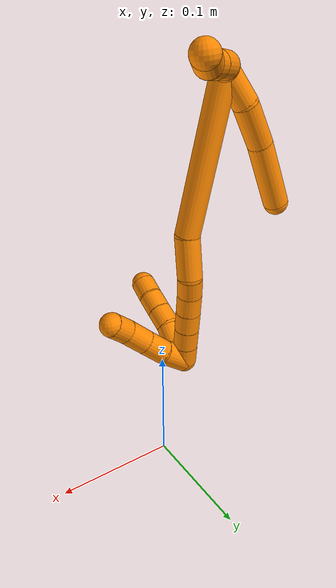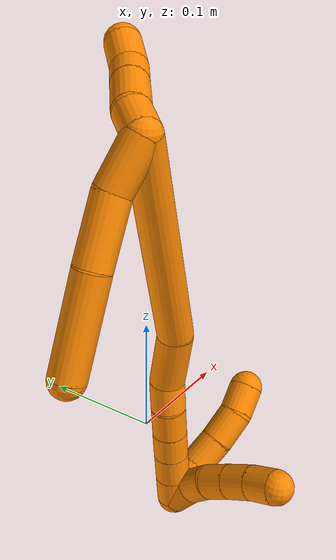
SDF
<sdf version="1.7">
 <world name="default">
  <model name="19">
   <static>0</static>
   <link name="19">
    <collision name="collision-cylinder-e_1_2_8">
     <pose>-0.005846 0.006263 -0.016114 -2.77086 -0.326098 1.44026</pose>
     <geometry><cylinder><radius>0.0125</radius><length>0.0365</length></cylinder></geometry>
     <surface>
      <friction><ode><mu>1.16</mu><mu2>1.16</mu2><slip1>0</slip1><slip2>0</slip2></ode></friction>
      <contact><ode><kp>1e+06</kp><kd>1</kd><max_vel>0</max_vel><min_depth>0.001</min_depth></ode></contact>
     </surface>
    </collision>
    <visual name="visual-cylinder-e_1_2_8">
     <pose>-0.005846 0.006263 -0.016114 -2.77086 -0.326098 1.44026</pose>
     <geometry><cylinder><radius>0.0125</radius><length>0.0365</length></cylinder></geometry>
     <material><ambient>0.996078 0.537255 0 1</ambient></material>
    </visual>
    <collision name="collision-cylinder-e_2_8_9">
     <pose>-0.021328 0.015014 -0.052707 -3.02075 -0.436945 2.60954</pose>
     <geometry><cylinder><radius>0.0125</radius><length>0.045539</length></cylinder></geometry>
     <surface>
      <friction><ode><mu>1.16</mu><mu2>1.16</mu2><slip1>0</slip1><slip2>0</slip2></ode></friction>
      <contact><ode><kp>1e+06</kp><kd>1</kd><max_vel>0</max_vel><min_depth>0.001</min_depth></ode></contact>
     </surface>
    </collision>
    <visual name="visual-cylinder-e_2_8_9">
     <pose>-0.021328 0.015014 -0.052707 -3.02075 -0.436945 2.60954</pose>
     <geometry><cylinder><radius>0.0125</radius><length>0.045539</length></cylinder></geometry>
     <material><ambient>0.996078 0.537255 0 1</ambient></material>
    </visual>
    <collision name="collision-cylinder-e_3_9_6">
     <pose>-0.041186 0.020519 -0.105452 -3.04832 -0.305581 2.55303</pose>
     <geometry><cylinder><radius>0.0125</radius><length>0.067961</length></cylinder></geometry>
     <surface>
      <friction><ode><mu>1.16</mu><mu2>1.16</mu2><slip1>0</slip1><slip2>0</slip2></ode></friction>
      <contact><ode><kp>1e+06</kp><kd>1</kd><max_vel>0</max_vel><min_depth>0.001</min_depth></ode></contact>
     </surface>
    </collision>
    <visual name="visual-cylinder-e_3_9_6">
     <pose>-0.041186 0.020519 -0.105452 -3.04832 -0.305581 2.55303</pose>
     <geometry><cylinder><radius>0.0125</radius><length>0.067961</length></cylinder></geometry>
     <material><ambient>0.996078 0.537255 0 1</ambient></material>
    </visual>
    <collision name="collision-cylinder-e_1_2_10">
     <pose>0.009692 0.0043 0.003019 -0.958643 1.07407 -0.60023</pose>
     <geometry><cylinder><radius>0.0125</radius><length>0.022049</length></cylinder></geometry>
     <surface>
      <friction><ode><mu>1.16</mu><mu2>1.16</mu2><slip1>0</slip1><slip2>0</slip2></ode></friction>
      <contact><ode><kp>1e+06</kp><kd>1</kd><max_vel>0</max_vel><min_depth>0.001</min_depth></ode></contact>
     </surface>
    </collision>
    <visual name="visual-cylinder-e_1_2_10">
     <pose>0.009692 0.0043 0.003019 -0.958643 1.07407 -0.60023</pose>
     <geometry><cylinder><radius>0.0125</radius><length>0.022049</length></cylinder></geometry>
     <material><ambient>0.996078 0.537255 0 1</ambient></material>
    </visual>
    <collision name="collision-cylinder-e_2_10_11">
     <pose>0.035452 0.010832 0.008846 -0.671817 1.35112 -0.545611</pose>
     <geometry><cylinder><radius>0.0125</radius><length>0.032927</length></cylinder></geometry>
     <surface>
      <friction><ode><mu>1.16</mu><mu2>1.16</mu2><slip1>0</slip1><slip2>0</slip2></ode></friction>
      <contact><ode><kp>1e+06</kp><kd>1</kd><max_vel>0</max_vel><min_depth>0.001</min_depth></ode></contact>
     </surface>
    </collision>
    <visual name="visual-cylinder-e_2_10_11">
     <pose>0.035452 0.010832 0.008846 -0.671817 1.35112 -0.545611</pose>
     <geometry><cylinder><radius>0.0125</radius><length>0.032927</length></cylinder></geometry>
     <material><ambient>0.996078 0.537255 0 1</ambient></material>
    </visual>
    <collision name="collision-cylinder-e_3_11_12">
     <pose>0.061472 0.014295 0.013248 -0.657041 1.37116 -0.54381</pose>
     <geometry><cylinder><radius>0.0125</radius><length>0.020306</length></cylinder></geometry>
     <surface>
      <friction><ode><mu>1.16</mu><mu2>1.16</mu2><slip1>0</slip1><slip2>0</slip2></ode></friction>
      <contact><ode><kp>1e+06</kp><kd>1</kd><max_vel>0</max_vel><min_depth>0.001</min_depth></ode></contact>
     </surface>
    </collision>
    <visual name="visual-cylinder-e_3_11_12">
     <pose>0.061472 0.014295 0.013248 -0.657041 1.37116 -0.54381</pose>
     <geometry><cylinder><radius>0.0125</radius><length>0.020306</length></cylinder></geometry>
     <material><ambient>0.996078 0.537255 0 1</ambient></material>
    </visual>
    <collision name="collision-cylinder-e_4_12_5">
     <pose>0.08217 0.019206 0.019711 -0.647468 1.05429 -0.385772</pose>
     <geometry><cylinder><radius>0.0125</radius><length>0.024718</length></cylinder></geometry>
     <surface>
      <friction><ode><mu>1.16</mu><mu2>1.16</mu2><slip1>0</slip1><slip2>0</slip2></ode></friction>
      <contact><ode><kp>1e+06</kp><kd>1</kd><max_vel>0</max_vel><min_depth>0.001</min_depth></ode></contact>
     </surface>
    </collision>
    <visual name="visual-cylinder-e_4_12_5">
     <pose>0.08217 0.019206 0.019711 -0.647468 1.05429 -0.385772</pose>
     <geometry><cylinder><radius>0.0125</radius><length>0.024718</length></cylinder></geometry>
     <material><ambient>0.996078 0.537255 0 1</ambient></material>
    </visual>
    <collision name="collision-cylinder-e_1_2_13">
     <pose>0.014059 -0.019553 -0.07352 2.88166 0.182745 1.22282</pose>
     <geometry><cylinder><radius>0.0125</radius><length>0.154728</length></cylinder></geometry>
     <surface>
      <friction><ode><mu>1.16</mu><mu2>1.16</mu2><slip1>0</slip1><slip2>0</slip2></ode></friction>
      <contact><ode><kp>1e+06</kp><kd>1</kd><max_vel>0</max_vel><min_depth>0.001</min_depth></ode></contact>
     </surface>
    </collision>
    <visual name="visual-cylinder-e_1_2_13">
     <pose>0.014059 -0.019553 -0.07352 2.88166 0.182745 1.22282</pose>
     <geometry><cylinder><radius>0.0125</radius><length>0.154728</length></cylinder></geometry>
     <material><ambient>0.996078 0.537255 0 1</ambient></material>
    </visual>
    <collision name="collision-cylinder-e_2_13_14">
     <pose>0.029837 -0.039174 -0.168137 3.13836 0.081259 3.0622</pose>
     <geometry><cylinder><radius>0.0125</radius><length>0.042332</length></cylinder></geometry>
     <surface>
      <friction><ode><mu>1.16</mu><mu2>1.16</mu2><slip1>0</slip1><slip2>0</slip2></ode></friction>
      <contact><ode><kp>1e+06</kp><kd>1</kd><max_vel>0</max_vel><min_depth>0.001</min_depth></ode></contact>
     </surface>
    </collision>
    <visual name="visual-cylinder-e_2_13_14">
     <pose>0.029837 -0.039174 -0.168137 3.13836 0.081259 3.0622</pose>
     <geometry><cylinder><radius>0.0125</radius><length>0.042332</length></cylinder></geometry>
     <material><ambient>0.996078 0.537255 0 1</ambient></material>
    </visual>
    <collision name="collision-cylinder-e_3_14_15">
     <pose>0.029811 -0.04126 -0.199489 2.94738 -0.165328 -1.4096</pose>
     <geometry><cylinder><radius>0.0125</radius><length>0.021195</length></cylinder></geometry>
     <surface>
      <friction><ode><mu>1.16</mu><mu2>1.16</mu2><slip1>0</slip1><slip2>0</slip2></ode></friction>
      <contact><ode><kp>1e+06</kp><kd>1</kd><max_vel>0</max_vel><min_depth>0.001</min_depth></ode></contact>
     </surface>
    </collision>
    <visual name="visual-cylinder-e_3_14_15">
     <pose>0.029811 -0.04126 -0.199489 2.94738 -0.165328 -1.4096</pose>
     <geometry><cylinder><radius>0.0125</radius><length>0.021195</length></cylinder></geometry>
     <material><ambient>0.996078 0.537255 0 1</ambient></material>
    </visual>
    <collision name="collision-cylinder-e_4_15_16">
     <pose>0.027748 -0.045292 -0.220167 2.95059 -0.030013 -0.310813</pose>
     <geometry><cylinder><radius>0.0125</radius><length>0.021238</length></cylinder></geometry>
     <surface>
      <friction><ode><mu>1.16</mu><mu2>1.16</mu2><slip1>0</slip1><slip2>0</slip2></ode></friction>
      <contact><ode><kp>1e+06</kp><kd>1</kd><max_vel>0</max_vel><min_depth>0.001</min_depth></ode></contact>
     </surface>
    </collision>
    <visual name="visual-cylinder-e_4_15_16">
     <pose>0.027748 -0.045292 -0.220167 2.95059 -0.030013 -0.310813</pose>
     <geometry><cylinder><radius>0.0125</radius><length>0.021238</length></cylinder></geometry>
     <material><ambient>0.996078 0.537255 0 1</ambient></material>
    </visual>
    <collision name="collision-cylinder-e_5_16_17">
     <pose>0.027302 -0.049232 -0.240462 2.94908 -0.012671 -0.131043</pose>
     <geometry><cylinder><radius>0.0125</radius><length>0.020123</length></cylinder></geometry>
     <surface>
      <friction><ode><mu>1.16</mu><mu2>1.16</mu2><slip1>0</slip1><slip2>0</slip2></ode></friction>
      <contact><ode><kp>1e+06</kp><kd>1</kd><max_vel>0</max_vel><min_depth>0.001</min_depth></ode></contact>
     </surface>
    </collision>
    <visual name="visual-cylinder-e_5_16_17">
     <pose>0.027302 -0.049232 -0.240462 2.94908 -0.012671 -0.131043</pose>
     <geometry><cylinder><radius>0.0125</radius><length>0.020123</length></cylinder></geometry>
     <material><ambient>0.996078 0.537255 0 1</ambient></material>
    </visual>
    <collision name="collision-cylinder-e_6_17_18">
     <pose>0.026873 -0.053218 -0.260299 2.93753 -0.029652 -0.287636</pose>
     <geometry><cylinder><radius>0.0125</radius><length>0.020355</length></cylinder></geometry>
     <surface>
      <friction><ode><mu>1.16</mu><mu2>1.16</mu2><slip1>0</slip1><slip2>0</slip2></ode></friction>
      <contact><ode><kp>1e+06</kp><kd>1</kd><max_vel>0</max_vel><min_depth>0.001</min_depth></ode></contact>
     </surface>
    </collision>
    <visual name="visual-cylinder-e_6_17_18">
     <pose>0.026873 -0.053218 -0.260299 2.93753 -0.029652 -0.287636</pose>
     <geometry><cylinder><radius>0.0125</radius><length>0.020355</length></cylinder></geometry>
     <material><ambient>0.996078 0.537255 0 1</ambient></material>
    </visual>
    <collision name="collision-cylinder-e_7_18_1">
     <pose>0.026091 -0.057357 -0.280046 2.93244 -0.047957 -0.449299</pose>
     <geometry><cylinder><radius>0.0125</radius><length>0.020029</length></cylinder></geometry>
     <surface>
      <friction><ode><mu>1.16</mu><mu2>1.16</mu2><slip1>0</slip1><slip2>0</slip2></ode></friction>
      <contact><ode><kp>1e+06</kp><kd>1</kd><max_vel>0</max_vel><min_depth>0.001</min_depth></ode></contact>
     </surface>
    </collision>
    <visual name="visual-cylinder-e_7_18_1">
     <pose>0.026091 -0.057357 -0.280046 2.93244 -0.047957 -0.449299</pose>
     <geometry><cylinder><radius>0.0125</radius><length>0.020029</length></cylinder></geometry>
     <material><ambient>0.996078 0.537255 0 1</ambient></material>
    </visual>
    <collision name="collision-cylinder-e_1_1_19">
     <pose>0.023452 -0.064747 -0.281639 0.575431 -0.217595 -0.064625</pose>
     <geometry><cylinder><radius>0.0125</radius><length>0.02</length></cylinder></geometry>
     <surface>
      <friction><ode><mu>1.16</mu><mu2>1.16</mu2><slip1>0</slip1><slip2>0</slip2></ode></friction>
      <contact><ode><kp>1e+06</kp><kd>1</kd><max_vel>0</max_vel><min_depth>0.001</min_depth></ode></contact>
     </surface>
    </collision>
    <visual name="visual-cylinder-e_1_1_19">
     <pose>0.023452 -0.064747 -0.281639 0.575431 -0.217595 -0.064625</pose>
     <geometry><cylinder><radius>0.0125</radius><length>0.02</length></cylinder></geometry>
     <material><ambient>0.996078 0.537255 0 1</ambient></material>
    </visual>
    <collision name="collision-cylinder-e_2_19_20">
     <pose>0.016852 -0.075271 -0.266159 0.620628 -0.460168 -0.149943</pose>
     <geometry><cylinder><radius>0.0125</radius><length>0.02</length></cylinder></geometry>
     <surface>
      <friction><ode><mu>1.16</mu><mu2>1.16</mu2><slip1>0</slip1><slip2>0</slip2></ode></friction>
      <contact><ode><kp>1e+06</kp><kd>1</kd><max_vel>0</max_vel><min_depth>0.001</min_depth></ode></contact>
     </surface>
    </collision>
    <visual name="visual-cylinder-e_2_19_20">
     <pose>0.016852 -0.075271 -0.266159 0.620628 -0.460168 -0.149943</pose>
     <geometry><cylinder><radius>0.0125</radius><length>0.02</length></cylinder></geometry>
     <material><ambient>0.996078 0.537255 0 1</ambient></material>
    </visual>
    <collision name="collision-cylinder-e_3_20_21">
     <pose>0.007888 -0.087409 -0.253253 0.889476 -0.469388 -0.226923</pose>
     <geometry><cylinder><radius>0.0125</radius><length>0.02</length></cylinder></geometry>
     <surface>
      <friction><ode><mu>1.16</mu><mu2>1.16</mu2><slip1>0</slip1><slip2>0</slip2></ode></friction>
      <contact><ode><kp>1e+06</kp><kd>1</kd><max_vel>0</max_vel><min_depth>0.001</min_depth></ode></contact>
     </surface>
    </collision>
    <visual name="visual-cylinder-e_3_20_21">
     <pose>0.007888 -0.087409 -0.253253 0.889476 -0.469388 -0.226923</pose>
     <geometry><cylinder><radius>0.0125</radius><length>0.02</length></cylinder></geometry>
     <material><ambient>0.996078 0.537255 0 1</ambient></material>
    </visual>
    <collision name="collision-cylinder-e_4_21_22">
     <pose>-0.001454 -0.10124 -0.242239 0.907287 -0.502676 -0.249082</pose>
     <geometry><cylinder><radius>0.0125</radius><length>0.02</length></cylinder></geometry>
     <surface>
      <friction><ode><mu>1.16</mu><mu2>1.16</mu2><slip1>0</slip1><slip2>0</slip2></ode></friction>
      <contact><ode><kp>1e+06</kp><kd>1</kd><max_vel>0</max_vel><min_depth>0.001</min_depth></ode></contact>
     </surface>
    </collision>
    <visual name="visual-cylinder-e_4_21_22">
     <pose>-0.001454 -0.10124 -0.242239 0.907287 -0.502676 -0.249082</pose>
     <geometry><cylinder><radius>0.0125</radius><length>0.02</length></cylinder></geometry>
     <material><ambient>0.996078 0.537255 0 1</ambient></material>
    </visual>
    <collision name="collision-cylinder-e_5_22_4">
     <pose>-0.011915 -0.115021 -0.232274 0.9845 -0.599634 -0.328579</pose>
     <geometry><cylinder><radius>0.0125</radius><length>0.02</length></cylinder></geometry>
     <surface>
      <friction><ode><mu>1.16</mu><mu2>1.16</mu2><slip1>0</slip1><slip2>0</slip2></ode></friction>
      <contact><ode><kp>1e+06</kp><kd>1</kd><max_vel>0</max_vel><min_depth>0.001</min_depth></ode></contact>
     </surface>
    </collision>
    <visual name="visual-cylinder-e_5_22_4">
     <pose>-0.011915 -0.115021 -0.232274 0.9845 -0.599634 -0.328579</pose>
     <geometry><cylinder><radius>0.0125</radius><length>0.02</length></cylinder></geometry>
     <material><ambient>0.996078 0.537255 0 1</ambient></material>
    </visual>
    <collision name="collision-cylinder-e_1_1_23">
     <pose>0.034589 -0.065965 -0.280976 0.635508 0.684394 0.233251</pose>
     <geometry><cylinder><radius>0.0125</radius><length>0.028402</length></cylinder></geometry>
     <surface>
      <friction><ode><mu>1.16</mu><mu2>1.16</mu2><slip1>0</slip1><slip2>0</slip2></ode></friction>
      <contact><ode><kp>1e+06</kp><kd>1</kd><max_vel>0</max_vel><min_depth>0.001</min_depth></ode></contact>
     </surface>
    </collision>
    <visual name="visual-cylinder-e_1_1_23">
     <pose>0.034589 -0.065965 -0.280976 0.635508 0.684394 0.233251</pose>
     <geometry><cylinder><radius>0.0125</radius><length>0.028402</length></cylinder></geometry>
     <material><ambient>0.996078 0.537255 0 1</ambient></material>
    </visual>
    <collision name="collision-cylinder-e_2_23_24">
     <pose>0.049325 -0.079071 -0.263805 0.669018 0.497593 0.176151</pose>
     <geometry><cylinder><radius>0.0125</radius><length>0.024128</length></cylinder></geometry>
     <surface>
      <friction><ode><mu>1.16</mu><mu2>1.16</mu2><slip1>0</slip1><slip2>0</slip2></ode></friction>
      <contact><ode><kp>1e+06</kp><kd>1</kd><max_vel>0</max_vel><min_depth>0.001</min_depth></ode></contact>
     </surface>
    </collision>
    <visual name="visual-cylinder-e_2_23_24">
     <pose>0.049325 -0.079071 -0.263805 0.669018 0.497593 0.176151</pose>
     <geometry><cylinder><radius>0.0125</radius><length>0.024128</length></cylinder></geometry>
     <material><ambient>0.996078 0.537255 0 1</ambient></material>
    </visual>
    <collision name="collision-cylinder-e_3_24_25">
     <pose>0.061871 -0.091587 -0.246335 0.57566 0.556397 0.168706</pose>
     <geometry><cylinder><radius>0.0125</radius><length>0.025704</length></cylinder></geometry>
     <surface>
      <friction><ode><mu>1.16</mu><mu2>1.16</mu2><slip1>0</slip1><slip2>0</slip2></ode></friction>
      <contact><ode><kp>1e+06</kp><kd>1</kd><max_vel>0</max_vel><min_depth>0.001</min_depth></ode></contact>
     </surface>
    </collision>
    <visual name="visual-cylinder-e_3_24_25">
     <pose>0.061871 -0.091587 -0.246335 0.57566 0.556397 0.168706</pose>
     <geometry><cylinder><radius>0.0125</radius><length>0.025704</length></cylinder></geometry>
     <material><ambient>0.996078 0.537255 0 1</ambient></material>
    </visual>
    <collision name="collision-cylinder-e_4_25_3">
     <pose>0.076139 -0.100333 -0.22979 0.362657 0.75781 0.145735</pose>
     <geometry><cylinder><radius>0.0125</radius><length>0.021765</length></cylinder></geometry>
     <surface>
      <friction><ode><mu>1.16</mu><mu2>1.16</mu2><slip1>0</slip1><slip2>0</slip2></ode></friction>
      <contact><ode><kp>1e+06</kp><kd>1</kd><max_vel>0</max_vel><min_depth>0.001</min_depth></ode></contact>
     </surface>
    </collision>
    <visual name="visual-cylinder-e_4_25_3">
     <pose>0.076139 -0.100333 -0.22979 0.362657 0.75781 0.145735</pose>
     <geometry><cylinder><radius>0.0125</radius><length>0.021765</length></cylinder></geometry>
     <material><ambient>0.996078 0.537255 0 1</ambient></material>
    </visual>
    <collision name="collision-sphere-3">
     <pose>0.083619 -0.103137 -0.2224 0 -0 0</pose>
     <geometry><sphere><radius>0.0125</radius></sphere></geometry>
     <surface>
      <friction><ode><mu>1.16</mu><mu2>1.16</mu2><slip1>0</slip1><slip2>0</slip2></ode></friction>
      <contact><ode><kp>1e+06</kp><kd>1</kd><max_vel>0</max_vel><min_depth>0.001</min_depth></ode></contact>
     </surface>
    </collision>
    <visual name="visual-sphere-3">
     <pose>0.083619 -0.103137 -0.2224 0 -0 0</pose>
     <geometry><sphere><radius>0.0125</radius></sphere></geometry>
     <material><ambient>0.996078 0.537255 0 1</ambient></material>
    </visual>
    <collision name="collision-sphere-25">
     <pose>0.068658 -0.097529 -0.23718 0 -0 0</pose>
     <geometry><sphere><radius>0.0125</radius></sphere></geometry>
     <surface>
      <friction><ode><mu>1.16</mu><mu2>1.16</mu2><slip1>0</slip1><slip2>0</slip2></ode></friction>
      <contact><ode><kp>1e+06</kp><kd>1</kd><max_vel>0</max_vel><min_depth>0.001</min_depth></ode></contact>
     </surface>
    </collision>
    <visual name="visual-sphere-25">
     <pose>0.068658 -0.097529 -0.23718 0 -0 0</pose>
     <geometry><sphere><radius>0.0125</radius></sphere></geometry>
     <material><ambient>0.996078 0.537255 0 1</ambient></material>
    </visual>
    <collision name="collision-sphere-24">
     <pose>0.055083 -0.085646 -0.25549 0 -0 0</pose>
     <geometry><sphere><radius>0.0125</radius></sphere></geometry>
     <surface>
      <friction><ode><mu>1.16</mu><mu2>1.16</mu2><slip1>0</slip1><slip2>0</slip2></ode></friction>
      <contact><ode><kp>1e+06</kp><kd>1</kd><max_vel>0</max_vel><min_depth>0.001</min_depth></ode></contact>
     </surface>
    </collision>
    <visual name="visual-sphere-24">
     <pose>0.055083 -0.085646 -0.25549 0 -0 0</pose>
     <geometry><sphere><radius>0.0125</radius></sphere></geometry>
     <material><ambient>0.996078 0.537255 0 1</ambient></material>
    </visual>
    <collision name="collision-sphere-23">
     <pose>0.043567 -0.072496 -0.272121 0 -0 0</pose>
     <geometry><sphere><radius>0.0125</radius></sphere></geometry>
     <surface>
      <friction><ode><mu>1.16</mu><mu2>1.16</mu2><slip1>0</slip1><slip2>0</slip2></ode></friction>
      <contact><ode><kp>1e+06</kp><kd>1</kd><max_vel>0</max_vel><min_depth>0.001</min_depth></ode></contact>
     </surface>
    </collision>
    <visual name="visual-sphere-23">
     <pose>0.043567 -0.072496 -0.272121 0 -0 0</pose>
     <geometry><sphere><radius>0.0125</radius></sphere></geometry>
     <material><ambient>0.996078 0.537255 0 1</ambient></material>
    </visual>
    <collision name="collision-sphere-4">
     <pose>-0.017558 -0.121898 -0.227707 0 -0 0</pose>
     <geometry><sphere><radius>0.0125</radius></sphere></geometry>
     <surface>
      <friction><ode><mu>1.16</mu><mu2>1.16</mu2><slip1>0</slip1><slip2>0</slip2></ode></friction>
      <contact><ode><kp>1e+06</kp><kd>1</kd><max_vel>0</max_vel><min_depth>0.001</min_depth></ode></contact>
     </surface>
    </collision>
    <visual name="visual-sphere-4">
     <pose>-0.017558 -0.121898 -0.227707 0 -0 0</pose>
     <geometry><sphere><radius>0.0125</radius></sphere></geometry>
     <material><ambient>0.996078 0.537255 0 1</ambient></material>
    </visual>
    <collision name="collision-sphere-22">
     <pose>-0.006271 -0.108144 -0.236842 0 -0 0</pose>
     <geometry><sphere><radius>0.0125</radius></sphere></geometry>
     <surface>
      <friction><ode><mu>1.16</mu><mu2>1.16</mu2><slip1>0</slip1><slip2>0</slip2></ode></friction>
      <contact><ode><kp>1e+06</kp><kd>1</kd><max_vel>0</max_vel><min_depth>0.001</min_depth></ode></contact>
     </surface>
    </collision>
    <visual name="visual-sphere-22">
     <pose>-0.006271 -0.108144 -0.236842 0 -0 0</pose>
     <geometry><sphere><radius>0.0125</radius></sphere></geometry>
     <material><ambient>0.996078 0.537255 0 1</ambient></material>
    </visual>
    <collision name="collision-sphere-21">
     <pose>0.003364 -0.094337 -0.247636 0 -0 0</pose>
     <geometry><sphere><radius>0.0125</radius></sphere></geometry>
     <surface>
      <friction><ode><mu>1.16</mu><mu2>1.16</mu2><slip1>0</slip1><slip2>0</slip2></ode></friction>
      <contact><ode><kp>1e+06</kp><kd>1</kd><max_vel>0</max_vel><min_depth>0.001</min_depth></ode></contact>
     </surface>
    </collision>
    <visual name="visual-sphere-21">
     <pose>0.003364 -0.094337 -0.247636 0 -0 0</pose>
     <geometry><sphere><radius>0.0125</radius></sphere></geometry>
     <material><ambient>0.996078 0.537255 0 1</ambient></material>
    </visual>
    <collision name="collision-sphere-20">
     <pose>0.012411 -0.080482 -0.25887 0 -0 0</pose>
     <geometry><sphere><radius>0.0125</radius></sphere></geometry>
     <surface>
      <friction><ode><mu>1.16</mu><mu2>1.16</mu2><slip1>0</slip1><slip2>0</slip2></ode></friction>
      <contact><ode><kp>1e+06</kp><kd>1</kd><max_vel>0</max_vel><min_depth>0.001</min_depth></ode></contact>
     </surface>
    </collision>
    <visual name="visual-sphere-20">
     <pose>0.012411 -0.080482 -0.25887 0 -0 0</pose>
     <geometry><sphere><radius>0.0125</radius></sphere></geometry>
     <material><ambient>0.996078 0.537255 0 1</ambient></material>
    </visual>
    <collision name="collision-sphere-11">
     <pose>0.05152 0.013065 0.011654 0 -0 0</pose>
     <geometry><sphere><radius>0.0125</radius></sphere></geometry>
     <surface>
      <friction><ode><mu>1.16</mu><mu2>1.16</mu2><slip1>0</slip1><slip2>0</slip2></ode></friction>
      <contact><ode><kp>1e+06</kp><kd>1</kd><max_vel>0</max_vel><min_depth>0.001</min_depth></ode></contact>
     </surface>
    </collision>
    <visual name="visual-sphere-11">
     <pose>0.05152 0.013065 0.011654 0 -0 0</pose>
     <geometry><sphere><radius>0.0125</radius></sphere></geometry>
     <material><ambient>0.996078 0.537255 0 1</ambient></material>
    </visual>
    <collision name="collision-sphere-10">
     <pose>0.019384 0.008599 0.006038 0 -0 0</pose>
     <geometry><sphere><radius>0.0125</radius></sphere></geometry>
     <surface>
      <friction><ode><mu>1.16</mu><mu2>1.16</mu2><slip1>0</slip1><slip2>0</slip2></ode></friction>
      <contact><ode><kp>1e+06</kp><kd>1</kd><max_vel>0</max_vel><min_depth>0.001</min_depth></ode></contact>
     </surface>
    </collision>
    <visual name="visual-sphere-10">
     <pose>0.019384 0.008599 0.006038 0 -0 0</pose>
     <geometry><sphere><radius>0.0125</radius></sphere></geometry>
     <material><ambient>0.996078 0.537255 0 1</ambient></material>
    </visual>
    <collision name="collision-sphere-6">
     <pose>-0.051409 0.023537 -0.137718 0 -0 0</pose>
     <geometry><sphere><radius>0.0125</radius></sphere></geometry>
     <surface>
      <friction><ode><mu>1.16</mu><mu2>1.16</mu2><slip1>0</slip1><slip2>0</slip2></ode></friction>
      <contact><ode><kp>1e+06</kp><kd>1</kd><max_vel>0</max_vel><min_depth>0.001</min_depth></ode></contact>
     </surface>
    </collision>
    <visual name="visual-sphere-6">
     <pose>-0.051409 0.023537 -0.137718 0 -0 0</pose>
     <geometry><sphere><radius>0.0125</radius></sphere></geometry>
     <material><ambient>0.996078 0.537255 0 1</ambient></material>
    </visual>
    <collision name="collision-sphere-9">
     <pose>-0.030963 0.017501 -0.073187 0 -0 0</pose>
     <geometry><sphere><radius>0.0125</radius></sphere></geometry>
     <surface>
      <friction><ode><mu>1.16</mu><mu2>1.16</mu2><slip1>0</slip1><slip2>0</slip2></ode></friction>
      <contact><ode><kp>1e+06</kp><kd>1</kd><max_vel>0</max_vel><min_depth>0.001</min_depth></ode></contact>
     </surface>
    </collision>
    <visual name="visual-sphere-9">
     <pose>-0.030963 0.017501 -0.073187 0 -0 0</pose>
     <geometry><sphere><radius>0.0125</radius></sphere></geometry>
     <material><ambient>0.996078 0.537255 0 1</ambient></material>
    </visual>
    <collision name="collision-sphere-2">
     <geometry><sphere><radius>0.0125</radius></sphere></geometry>
     <surface>
      <friction><ode><mu>1.16</mu><mu2>1.16</mu2><slip1>0</slip1><slip2>0</slip2></ode></friction>
      <contact><ode><kp>1e+06</kp><kd>1</kd><max_vel>0</max_vel><min_depth>0.001</min_depth></ode></contact>
     </surface>
    </collision>
    <visual name="visual-sphere-2">
     <geometry><sphere><radius>0.0125</radius></sphere></geometry>
     <material><ambient>0.996078 0.537255 0 1</ambient></material>
    </visual>
    <collision name="collision-sphere-19">
     <pose>0.021293 -0.070061 -0.273448 0 -0 0</pose>
     <geometry><sphere><radius>0.0125</radius></sphere></geometry>
     <surface>
      <friction><ode><mu>1.16</mu><mu2>1.16</mu2><slip1>0</slip1><slip2>0</slip2></ode></friction>
      <contact><ode><kp>1e+06</kp><kd>1</kd><max_vel>0</max_vel><min_depth>0.001</min_depth></ode></contact>
     </surface>
    </collision>
    <visual name="visual-sphere-19">
     <pose>0.021293 -0.070061 -0.273448 0 -0 0</pose>
     <geometry><sphere><radius>0.0125</radius></sphere></geometry>
     <material><ambient>0.996078 0.537255 0 1</ambient></material>
    </visual>
    <collision name="collision-sphere-8">
     <pose>-0.011693 0.012527 -0.032227 0 -0 0</pose>
     <geometry><sphere><radius>0.0125</radius></sphere></geometry>
     <surface>
      <friction><ode><mu>1.16</mu><mu2>1.16</mu2><slip1>0</slip1><slip2>0</slip2></ode></friction>
      <contact><ode><kp>1e+06</kp><kd>1</kd><max_vel>0</max_vel><min_depth>0.001</min_depth></ode></contact>
     </surface>
    </collision>
    <visual name="visual-sphere-8">
     <pose>-0.011693 0.012527 -0.032227 0 -0 0</pose>
     <geometry><sphere><radius>0.0125</radius></sphere></geometry>
     <material><ambient>0.996078 0.537255 0 1</ambient></material>
    </visual>
    <collision name="collision-sphere-12">
     <pose>0.071423 0.015525 0.014843 0 -0 0</pose>
     <geometry><sphere><radius>0.0125</radius></sphere></geometry>
     <surface>
      <friction><ode><mu>1.16</mu><mu2>1.16</mu2><slip1>0</slip1><slip2>0</slip2></ode></friction>
      <contact><ode><kp>1e+06</kp><kd>1</kd><max_vel>0</max_vel><min_depth>0.001</min_depth></ode></contact>
     </surface>
    </collision>
    <visual name="visual-sphere-12">
     <pose>0.071423 0.015525 0.014843 0 -0 0</pose>
     <geometry><sphere><radius>0.0125</radius></sphere></geometry>
     <material><ambient>0.996078 0.537255 0 1</ambient></material>
    </visual>
    <collision name="collision-sphere-5">
     <pose>0.092916 0.022888 0.024579 0 -0 0</pose>
     <geometry><sphere><radius>0.0125</radius></sphere></geometry>
     <surface>
      <friction><ode><mu>1.16</mu><mu2>1.16</mu2><slip1>0</slip1><slip2>0</slip2></ode></friction>
      <contact><ode><kp>1e+06</kp><kd>1</kd><max_vel>0</max_vel><min_depth>0.001</min_depth></ode></contact>
     </surface>
    </collision>
    <visual name="visual-sphere-5">
     <pose>0.092916 0.022888 0.024579 0 -0 0</pose>
     <geometry><sphere><radius>0.0125</radius></sphere></geometry>
     <material><ambient>0.996078 0.537255 0 1</ambient></material>
    </visual>
    <collision name="collision-sphere-13">
     <pose>0.028119 -0.039106 -0.147041 0 -0 0</pose>
     <geometry><sphere><radius>0.0125</radius></sphere></geometry>
     <surface>
      <friction><ode><mu>1.16</mu><mu2>1.16</mu2><slip1>0</slip1><slip2>0</slip2></ode></friction>
      <contact><ode><kp>1e+06</kp><kd>1</kd><max_vel>0</max_vel><min_depth>0.001</min_depth></ode></contact>
     </surface>
    </collision>
    <visual name="visual-sphere-13">
     <pose>0.028119 -0.039106 -0.147041 0 -0 0</pose>
     <geometry><sphere><radius>0.0125</radius></sphere></geometry>
     <material><ambient>0.996078 0.537255 0 1</ambient></material>
    </visual>
    <collision name="collision-sphere-14">
     <pose>0.031555 -0.039242 -0.189233 0 -0 0</pose>
     <geometry><sphere><radius>0.0125</radius></sphere></geometry>
     <surface>
      <friction><ode><mu>1.16</mu><mu2>1.16</mu2><slip1>0</slip1><slip2>0</slip2></ode></friction>
      <contact><ode><kp>1e+06</kp><kd>1</kd><max_vel>0</max_vel><min_depth>0.001</min_depth></ode></contact>
     </surface>
    </collision>
    <visual name="visual-sphere-14">
     <pose>0.031555 -0.039242 -0.189233 0 -0 0</pose>
     <geometry><sphere><radius>0.0125</radius></sphere></geometry>
     <material><ambient>0.996078 0.537255 0 1</ambient></material>
    </visual>
    <collision name="collision-sphere-15">
     <pose>0.028067 -0.043277 -0.209745 0 -0 0</pose>
     <geometry><sphere><radius>0.0125</radius></sphere></geometry>
     <surface>
      <friction><ode><mu>1.16</mu><mu2>1.16</mu2><slip1>0</slip1><slip2>0</slip2></ode></friction>
      <contact><ode><kp>1e+06</kp><kd>1</kd><max_vel>0</max_vel><min_depth>0.001</min_depth></ode></contact>
     </surface>
    </collision>
    <visual name="visual-sphere-15">
     <pose>0.028067 -0.043277 -0.209745 0 -0 0</pose>
     <geometry><sphere><radius>0.0125</radius></sphere></geometry>
     <material><ambient>0.996078 0.537255 0 1</ambient></material>
    </visual>
    <collision name="collision-sphere-16">
     <pose>0.027429 -0.047307 -0.230588 0 -0 0</pose>
     <geometry><sphere><radius>0.0125</radius></sphere></geometry>
     <surface>
      <friction><ode><mu>1.16</mu><mu2>1.16</mu2><slip1>0</slip1><slip2>0</slip2></ode></friction>
      <contact><ode><kp>1e+06</kp><kd>1</kd><max_vel>0</max_vel><min_depth>0.001</min_depth></ode></contact>
     </surface>
    </collision>
    <visual name="visual-sphere-16">
     <pose>0.027429 -0.047307 -0.230588 0 -0 0</pose>
     <geometry><sphere><radius>0.0125</radius></sphere></geometry>
     <material><ambient>0.996078 0.537255 0 1</ambient></material>
    </visual>
    <collision name="collision-sphere-17">
     <pose>0.027174 -0.051157 -0.250337 0 -0 0</pose>
     <geometry><sphere><radius>0.0125</radius></sphere></geometry>
     <surface>
      <friction><ode><mu>1.16</mu><mu2>1.16</mu2><slip1>0</slip1><slip2>0</slip2></ode></friction>
      <contact><ode><kp>1e+06</kp><kd>1</kd><max_vel>0</max_vel><min_depth>0.001</min_depth></ode></contact>
     </surface>
    </collision>
    <visual name="visual-sphere-17">
     <pose>0.027174 -0.051157 -0.250337 0 -0 0</pose>
     <geometry><sphere><radius>0.0125</radius></sphere></geometry>
     <material><ambient>0.996078 0.537255 0 1</ambient></material>
    </visual>
    <collision name="collision-sphere-18">
     <pose>0.026571 -0.05528 -0.270261 0 -0 0</pose>
     <geometry><sphere><radius>0.0125</radius></sphere></geometry>
     <surface>
      <friction><ode><mu>1.16</mu><mu2>1.16</mu2><slip1>0</slip1><slip2>0</slip2></ode></friction>
      <contact><ode><kp>1e+06</kp><kd>1</kd><max_vel>0</max_vel><min_depth>0.001</min_depth></ode></contact>
     </surface>
    </collision>
    <visual name="visual-sphere-18">
     <pose>0.026571 -0.05528 -0.270261 0 -0 0</pose>
     <geometry><sphere><radius>0.0125</radius></sphere></geometry>
     <material><ambient>0.996078 0.537255 0 1</ambient></material>
    </visual>
    <collision name="collision-sphere-1">
     <pose>0.025611 -0.059434 -0.289831 0 -0 0</pose>
     <geometry><sphere><radius>0.0125</radius></sphere></geometry>
     <surface>
      <friction><ode><mu>1.16</mu><mu2>1.16</mu2><slip1>0</slip1><slip2>0</slip2></ode></friction>
      <contact><ode><kp>1e+06</kp><kd>1</kd><max_vel>0</max_vel><min_depth>0.001</min_depth></ode></contact>
     </surface>
    </collision>
    <visual name="visual-sphere-1">
     <pose>0.025611 -0.059434 -0.289831 0 -0 0</pose>
     <geometry><sphere><radius>0.0125</radius></sphere></geometry>
     <material><ambient>0.996078 0.537255 0 1</ambient></material>
    </visual>
    <inertial>
     <pose>0.017429 -0.031217 -0.137833 0 -0 0</pose>
     <mass>0.75</mass>
     <inertia><ixx>0.000408</ixx><ixy>0</ixy><ixz>0</ixz><iyy>0.00027</iyy><iyz>0</iyz><izz>7e-06</izz></inertia>
    </inertial>
   </link>
   <pose>-0.121244 -0.084595 0.308578 0.135446 -0.04624 0.548635</pose>
  </model>
 </world>
</sdf>
